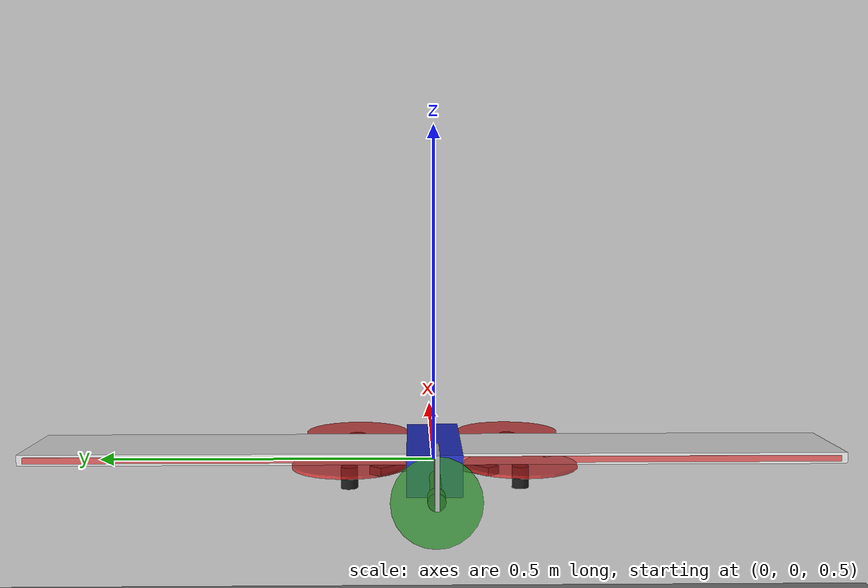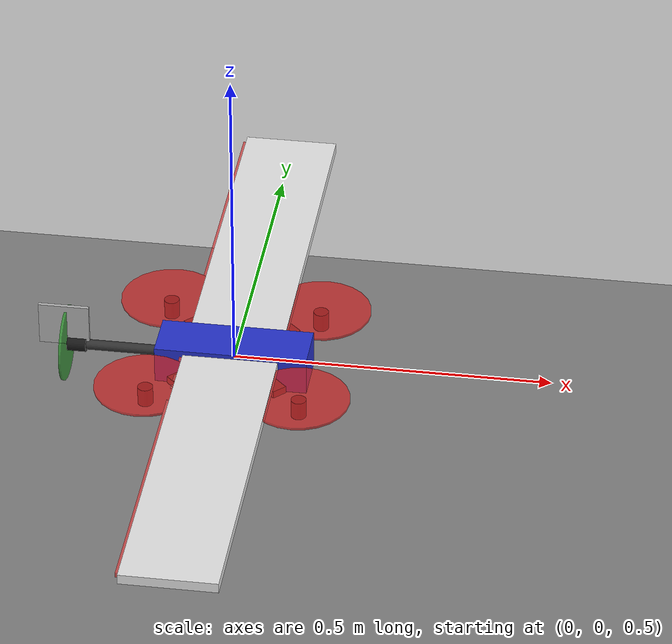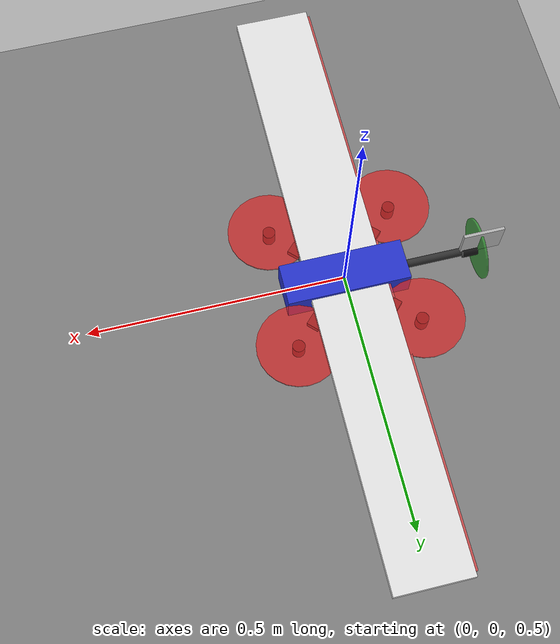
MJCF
<?xml version="1.0" ?>
<mujoco model="quadplane">

  <compiler inertiafromgeom="auto" angle="radian"/>

  <option timestep="0.001" gravity="0 0 -9.81" integrator="RK4"/>

  <visual>
    <headlight ambient="0.4 0.4 0.4" diffuse="0.6 0.6 0.6" specular="0.1 0.1 0.1"/>
    <map shadowclip="1" shadowscale="0.6"/>
    <quality shadowsize="2048"/>
    <global offwidth="1280" offheight="720"/>
  </visual>

  <asset>
    <texture name="skybox" type="skybox" builtin="gradient"
             rgb1="0.4 0.6 0.8" rgb2="0.8 0.9 1.0" width="512" height="512"/>
    <texture name="tex_ground" type="2d" builtin="checker"
             rgb1="0.45 0.45 0.45" rgb2="0.55 0.55 0.55" width="512" height="512"/>
    <material name="mat_ground" texture="tex_ground" texrepeat="10 10"
              specular="0.1" shininess="0.1" reflectance="0.0"/>
    <material name="mat_body"   rgba="0.15 0.20 0.80 1" specular="0.5" shininess="0.7"/>
    <material name="mat_arm"    rgba="0.20 0.20 0.20 1" specular="0.2"/>
    <material name="mat_motor"  rgba="0.10 0.10 0.10 1" specular="0.3"/>
    <material name="mat_rotor"  rgba="0.85 0.15 0.15 0.75" specular="0.2"/>
    <material name="mat_wing"   rgba="0.90 0.90 0.90 0.9" specular="0.3" shininess="0.5"/>
    <material name="mat_tail"   rgba="0.70 0.70 0.70 0.9" specular="0.2"/>
    <material name="mat_pusher" rgba="0.2 0.6 0.2 0.8" specular="0.2"/>
  </asset>

  <worldbody>
    <!-- Ground plane — 120 m radius -->
    <geom name="ground" type="plane" size="120 120 0.1" material="mat_ground" pos="0 0 0"/>

    <!-- Main quadplane body -->
    <body name="body" pos="0 0 0.5">
      <freejoint name="root"/>

      <!-- Central fuselage (compact) -->
      <inertial pos="0 0 0" mass="1.2" diaginertia="0.020 0.005 0.022"/>
      <geom name="body_geom" type="box" size="0.12 0.04 0.03" material="mat_body"/>

      <!-- Arms (smaller, X-config, arm_length=0.12) -->
      <geom name="arm_fl_br" type="box" size="0.12 0.012 0.006" euler="0 0  0.7854" material="mat_arm"/>
      <geom name="arm_fr_bl" type="box" size="0.12 0.012 0.006" euler="0 0 -0.7854" material="mat_arm"/>

      <!-- ========== Wing (1.2 m span, chord = 1.2/8 = 0.15 m) ========== -->
      <!-- half-chord = 0.075,  half-span = 0.6 -->
      <geom name="wing" type="box" size="0.075 0.6 0.008"
            pos="0 0 0.015" material="mat_wing"/>

      <!-- Flaperon surfaces (visual) — one per wing side.
           Same surface acts as flap (both down) or aileron (differential). -->
      <geom name="flaperon_left"  type="box" size="0.025 0.28 0.004"
            pos="-0.055 0.31 0.015" rgba="0.9 0.3 0.3 0.8"/>
      <geom name="flaperon_right" type="box" size="0.025 0.28 0.004"
            pos="-0.055 -0.31 0.015" rgba="0.9 0.3 0.3 0.8"/>

      <!-- Tail boom (visual) -->
      <geom name="tail_boom" type="capsule" fromto="0 0 0  -0.25 0 0"
            size="0.008" material="mat_arm"/>

      <!-- Vertical tail fin (visual stability cue) -->
      <geom name="vtail" type="box" size="0.04 0.003 0.035"
            pos="-0.27 0 0.035" material="mat_tail"/>

      <!-- ---- Front-Left motor + rotor (smaller props, r=0.08) ---- -->
      <body name="motor_fl" pos="-0.12 0.12 0.0">
        <inertial pos="0 0 0" mass="0.04" diaginertia="5e-5 5e-5 5e-5"/>
        <geom name="motor_fl_geom" type="cylinder" size="0.012 0.015" material="mat_motor"/>
        <joint name="rotor_fl" type="hinge" axis="0 0 1" limited="false" damping="1e-4"/>
        <geom name="prop_fl" type="cylinder" size="0.08 0.002" pos="0 0 0.017" material="mat_rotor"/>
      </body>

      <!-- ---- Front-Right motor + rotor ---- -->
      <body name="motor_fr" pos="0.12 0.12 0.0">
        <inertial pos="0 0 0" mass="0.04" diaginertia="5e-5 5e-5 5e-5"/>
        <geom name="motor_fr_geom" type="cylinder" size="0.012 0.015" material="mat_motor"/>
        <joint name="rotor_fr" type="hinge" axis="0 0 1" limited="false" damping="1e-4"/>
        <geom name="prop_fr" type="cylinder" size="0.08 0.002" pos="0 0 0.017" material="mat_rotor"/>
      </body>

      <!-- ---- Back-Left motor + rotor ---- -->
      <body name="motor_bl" pos="-0.12 -0.12 0.0">
        <inertial pos="0 0 0" mass="0.04" diaginertia="5e-5 5e-5 5e-5"/>
        <geom name="motor_bl_geom" type="cylinder" size="0.012 0.015" material="mat_motor"/>
        <joint name="rotor_bl" type="hinge" axis="0 0 1" limited="false" damping="1e-4"/>
        <geom name="prop_bl" type="cylinder" size="0.08 0.002" pos="0 0 0.017" material="mat_rotor"/>
      </body>

      <!-- ---- Back-Right motor + rotor ---- -->
      <body name="motor_br" pos="0.12 -0.12 0.0">
        <inertial pos="0 0 0" mass="0.04" diaginertia="5e-5 5e-5 5e-5"/>
        <geom name="motor_br_geom" type="cylinder" size="0.012 0.015" material="mat_motor"/>
        <joint name="rotor_br" type="hinge" axis="0 0 1" limited="false" damping="1e-4"/>
        <geom name="prop_br" type="cylinder" size="0.08 0.002" pos="0 0 0.017" material="mat_rotor"/>
      </body>

      <!-- ---- Pusher motor (rear, thrust along +X) ---- -->
      <!-- Motor housing: static geom, oriented along X via fromto -->
      <geom name="motor_pusher_geom" type="cylinder" size="0.012"
            fromto="-0.235 0 0  -0.265 0 0" material="mat_motor"/>
      <!-- Prop body: oriented so local Z = parent X (pusher spin axis).
           Joint axis 0 0 1 spins the disc in the body's XY plane = parent YZ. -->
      <body name="pusher_prop_body" pos="-0.267 0.0 0.0" euler="0 1.5708 0">
        <inertial pos="0 0 0" mass="0.02" diaginertia="2e-5 2e-5 2e-5"/>
        <joint name="rotor_pusher" type="hinge" axis="0 0 1" limited="false" damping="1e-4"/>
        <geom name="prop_pusher" type="cylinder" size="0.06 0.002"
              material="mat_pusher"/>
      </body>
    </body>
  </worldbody>

  <actuator>
    <motor name="act_fl" joint="rotor_fl" gear="0.01" ctrlrange="-1 1"/>
    <motor name="act_fr" joint="rotor_fr" gear="0.01" ctrlrange="-1 1"/>
    <motor name="act_bl" joint="rotor_bl" gear="0.01" ctrlrange="-1 1"/>
    <motor name="act_br" joint="rotor_br" gear="0.01" ctrlrange="-1 1"/>
    <motor name="act_pusher" joint="rotor_pusher" gear="0.01" ctrlrange="-1 1"/>
  </actuator>

</mujoco>
